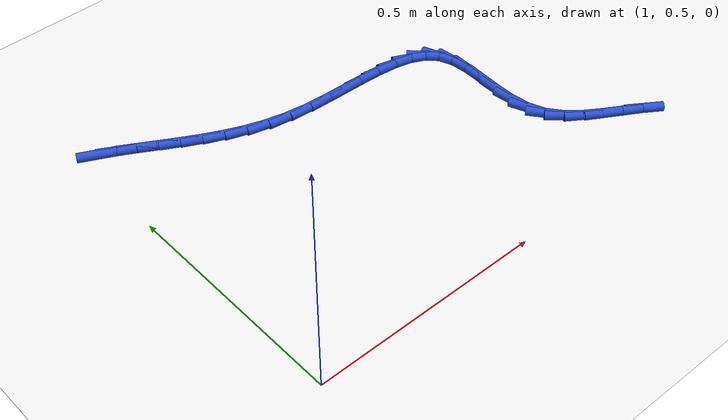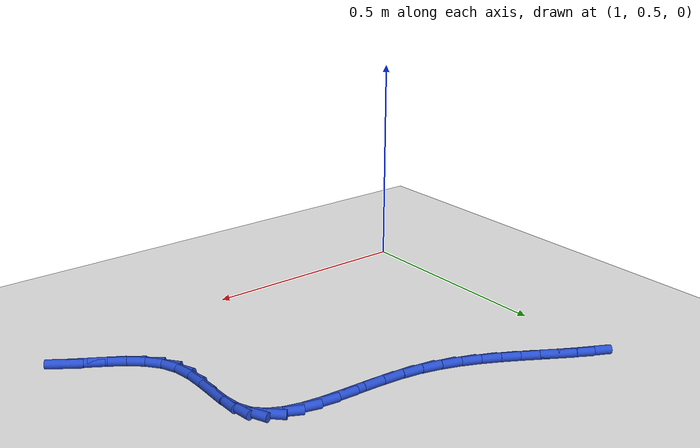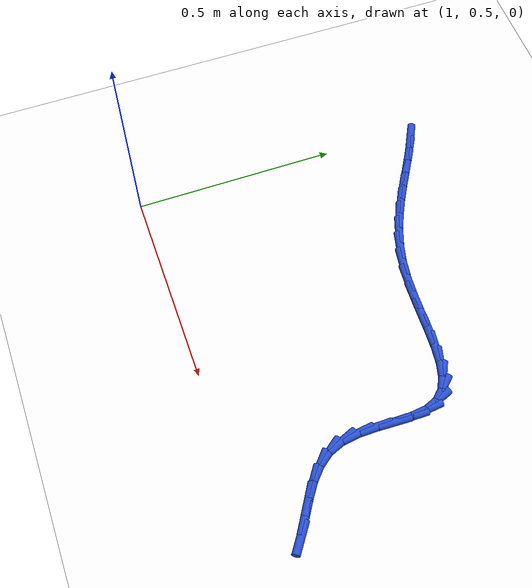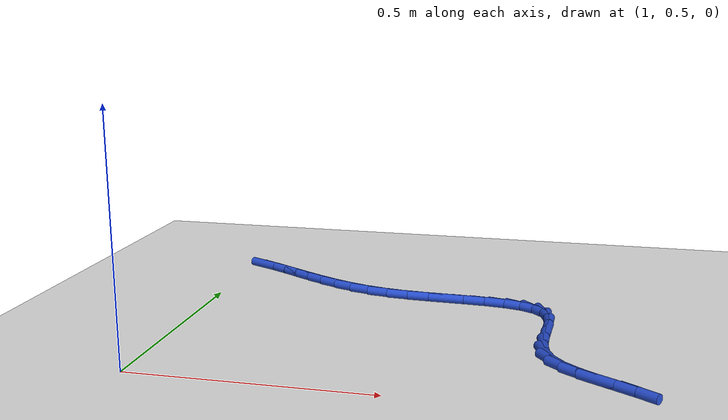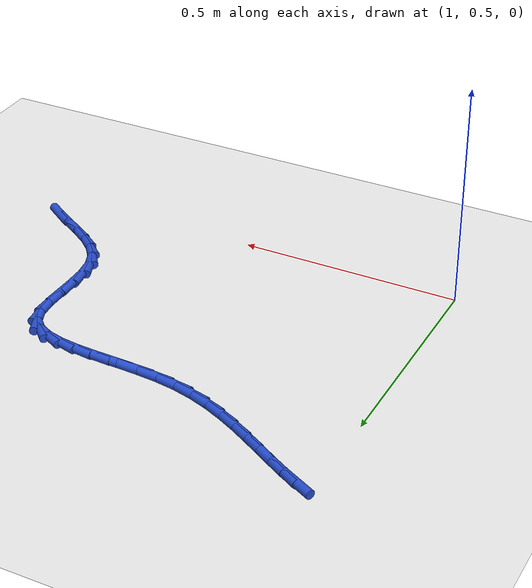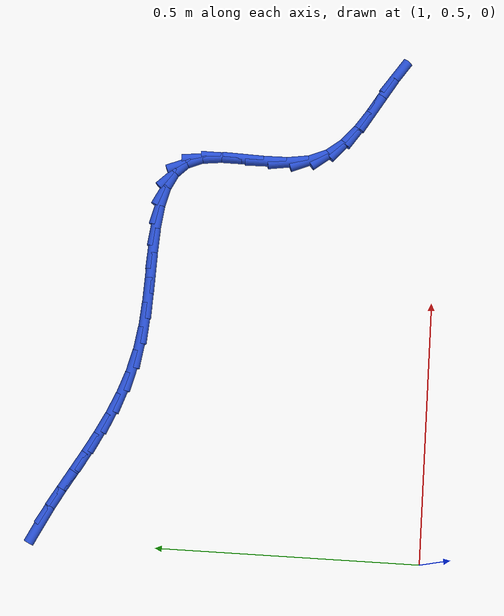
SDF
<sdf version="1.6">
 <world name="default">
  <model name="ground_plane">
   <static>1</static>
   <link name="link">
    <collision name="collision">
     <geometry><plane><normal>0 0 1</normal><size>100 100</size></plane></geometry>
     <surface><friction><ode><mu>100</mu><mu2>50</mu2></ode></friction></surface>
    </collision>
    <visual name="visual">
     <cast_shadows>0</cast_shadows>
     <geometry><plane><normal>0 0 1</normal><size>100 100</size></plane></geometry>
     <material>
      <script><uri>file://media/materials/scripts/gazebo.material</uri><name>Gazebo/WhiteGlow</name></script>
     </material>
    </visual>
   </link>
  </model>
  <model name="line">
   <link name="link_44">
    <pose>1.03076898274853 1.2206779909959502 0.01 0 1.57 -0.46638041518679646</pose>
    <collision name="collision">
     <geometry><cylinder><radius>0.01</radius><length>0.08</length></cylinder></geometry>
    </collision>
    <visual name="visual">
     <material>
      <script><name>Gazebo/Blue</name><uri>file://media/materials/scripts/gazebo.material</uri></script>
     </material>
     <geometry><cylinder><radius>0.01</radius><length>0.08</length></cylinder></geometry>
    </visual>
   </link>
   <link name="link_45">
    <pose>1.065326245441121 1.2032811499567206 0.01 0 1.57 -0.5098063022087665</pose>
    <collision name="collision">
     <geometry><cylinder><radius>0.01</radius><length>0.08</length></cylinder></geometry>
    </collision>
    <visual name="visual">
     <material>
      <script><name>Gazebo/Blue</name><uri>file://media/materials/scripts/gazebo.material</uri></script>
     </material>
     <geometry><cylinder><radius>0.01</radius><length>0.08</length></cylinder></geometry>
    </visual>
   </link>
   <link name="link_46">
    <pose>1.1002520538948501 1.1837539753512023 0.01 0 1.57 -0.5297196386514679</pose>
    <collision name="collision">
     <geometry><cylinder><radius>0.01</radius><length>0.08</length></cylinder></geometry>
    </collision>
    <visual name="visual">
     <material>
      <script><name>Gazebo/Blue</name><uri>file://media/materials/scripts/gazebo.material</uri></script>
     </material>
     <geometry><cylinder><radius>0.01</radius><length>0.08</length></cylinder></geometry>
    </visual>
   </link>
   <link name="link_47">
    <pose>1.1358236180634598 1.162925385113064 0.01 0 1.57 -0.5283322602829534</pose>
    <collision name="collision">
     <geometry><cylinder><radius>0.01</radius><length>0.08</length></cylinder></geometry>
    </collision>
    <visual name="visual">
     <material>
      <script><name>Gazebo/Blue</name><uri>file://media/materials/scripts/gazebo.material</uri></script>
     </material>
     <geometry><cylinder><radius>0.01</radius><length>0.08</length></cylinder></geometry>
    </visual>
   </link>
   <link name="link_48">
    <pose>1.1723181479006914 1.1416242971759734 0.01 0 1.57 -0.5071626566063893</pose>
    <collision name="collision">
     <geometry><cylinder><radius>0.01</radius><length>0.08</length></cylinder></geometry>
    </collision>
    <visual name="visual">
     <material>
      <script><name>Gazebo/Blue</name><uri>file://media/materials/scripts/gazebo.material</uri></script>
     </material>
     <geometry><cylinder><radius>0.01</radius><length>0.08</length></cylinder></geometry>
    </visual>
   </link>
   <link name="link_49">
    <pose>1.2100128533602879 1.120679629473599 0.01 0 1.57 -0.4671802714398391</pose>
    <collision name="collision">
     <geometry><cylinder><radius>0.01</radius><length>0.08</length></cylinder></geometry>
    </collision>
    <visual name="visual">
     <material>
      <script><name>Gazebo/Blue</name><uri>file://media/materials/scripts/gazebo.material</uri></script>
     </material>
     <geometry><cylinder><radius>0.01</radius><length>0.08</length></cylinder></geometry>
    </visual>
   </link>
   <link name="link_50">
    <pose>1.2491849443959908 1.1009202999396097 0.01 0 1.57 -0.40911714017227935</pose>
    <collision name="collision">
     <geometry><cylinder><radius>0.01</radius><length>0.08</length></cylinder></geometry>
    </collision>
    <visual name="visual">
     <material>
      <script><name>Gazebo/Blue</name><uri>file://media/materials/scripts/gazebo.material</uri></script>
     </material>
     <geometry><cylinder><radius>0.01</radius><length>0.08</length></cylinder></geometry>
    </visual>
   </link>
   <link name="link_51">
    <pose>1.2901116309615432 1.0831752265076737 0.01 0 1.57 -0.3339021195107667</pose>
    <collision name="collision">
     <geometry><cylinder><radius>0.01</radius><length>0.08</length></cylinder></geometry>
    </collision>
    <visual name="visual">
     <material>
      <script><name>Gazebo/Blue</name><uri>file://media/materials/scripts/gazebo.material</uri></script>
     </material>
     <geometry><cylinder><radius>0.01</radius><length>0.08</length></cylinder></geometry>
    </visual>
   </link>
   <link name="link_52">
    <pose>1.3330701230106872 1.0682733271114588 0.01 0 1.57 -0.2431675466790465</pose>
    <collision name="collision">
     <geometry><cylinder><radius>0.01</radius><length>0.08</length></cylinder></geometry>
    </collision>
    <visual name="visual">
     <material>
      <script><name>Gazebo/Blue</name><uri>file://media/materials/scripts/gazebo.material</uri></script>
     </material>
     <geometry><cylinder><radius>0.01</radius><length>0.08</length></cylinder></geometry>
    </visual>
   </link>
   <link name="link_53">
    <pose>1.3783376304971646 1.0570435196846342 0.01 0 1.57 -0.1456776935267775</pose>
    <collision name="collision">
     <geometry><cylinder><radius>0.01</radius><length>0.08</length></cylinder></geometry>
    </collision>
    <visual name="visual">
     <material>
      <script><name>Gazebo/Blue</name><uri>file://media/materials/scripts/gazebo.material</uri></script>
     </material>
     <geometry><cylinder><radius>0.01</radius><length>0.08</length></cylinder></geometry>
    </visual>
   </link>
   <link name="link_54">
    <pose>1.42600359173215 1.0500501109070908 0.01 0 1.57 -0.07510812287152586</pose>
    <collision name="collision">
     <geometry><cylinder><radius>0.01</radius><length>0.08</length></cylinder></geometry>
    </collision>
    <visual name="visual">
     <material>
      <script><name>Gazebo/Blue</name><uri>file://media/materials/scripts/gazebo.material</uri></script>
     </material>
     <geometry><cylinder><radius>0.01</radius><length>0.08</length></cylinder></geometry>
    </visual>
   </link>
   <link name="link_55">
    <pose>1.4750921760559546 1.0463562108236164 0.01 0 1.57 -0.03781792178557751</pose>
    <collision name="collision">
     <geometry><cylinder><radius>0.01</radius><length>0.08</length></cylinder></geometry>
    </collision>
    <visual name="visual">
     <material>
      <script><name>Gazebo/Blue</name><uri>file://media/materials/scripts/gazebo.material</uri></script>
     </material>
     <geometry><cylinder><radius>0.01</radius><length>0.08</length></cylinder></geometry>
    </visual>
   </link>
   <link name="link_56">
    <pose>1.5242523511176602 1.0444961883518673 0.01 0 1.57 -0.031158605753219992</pose>
    <collision name="collision">
     <geometry><cylinder><radius>0.01</radius><length>0.08</length></cylinder></geometry>
    </collision>
    <visual name="visual">
     <material>
      <script><name>Gazebo/Blue</name><uri>file://media/materials/scripts/gazebo.material</uri></script>
     </material>
     <geometry><cylinder><radius>0.01</radius><length>0.08</length></cylinder></geometry>
    </visual>
   </link>
   <link name="link_57">
    <pose>1.5721326652700809 1.0430038215294792 0.01 0 1.57 -0.05719699922522653</pose>
    <collision name="collision">
     <geometry><cylinder><radius>0.01</radius><length>0.08</length></cylinder></geometry>
    </collision>
    <visual name="visual">
     <material>
      <script><name>Gazebo/Blue</name><uri>file://media/materials/scripts/gazebo.material</uri></script>
     </material>
     <geometry><cylinder><radius>0.01</radius><length>0.08</length></cylinder></geometry>
    </visual>
   </link>
   <link name="link_58">
    <pose>1.6173816668660306 1.0404128883940884 0.01 0 1.57 -0.12429395373571693</pose>
    <collision name="collision">
     <geometry><cylinder><radius>0.01</radius><length>0.08</length></cylinder></geometry>
    </collision>
    <visual name="visual">
     <material>
      <script><name>Gazebo/Blue</name><uri>file://media/materials/scripts/gazebo.material</uri></script>
     </material>
     <geometry><cylinder><radius>0.01</radius><length>0.08</length></cylinder></geometry>
    </visual>
   </link>
   <link name="link_59">
    <pose>1.6586479042583213 1.0352571669833315 0.01 0 1.57 -0.2503077564738116</pose>
    <collision name="collision">
     <geometry><cylinder><radius>0.01</radius><length>0.08</length></cylinder></geometry>
    </collision>
    <visual name="visual">
     <material>
      <script><name>Gazebo/Blue</name><uri>file://media/materials/scripts/gazebo.material</uri></script>
     </material>
     <geometry><cylinder><radius>0.01</radius><length>0.08</length></cylinder></geometry>
    </visual>
   </link>
   <link name="link_60">
    <pose>1.694579925799767 1.0260704353348438 0.01 0 1.57 -0.4653089791982063</pose>
    <collision name="collision">
     <geometry><cylinder><radius>0.01</radius><length>0.08</length></cylinder></geometry>
    </collision>
    <visual name="visual">
     <material>
      <script><name>Gazebo/Blue</name><uri>file://media/materials/scripts/gazebo.material</uri></script>
     </material>
     <geometry><cylinder><radius>0.01</radius><length>0.08</length></cylinder></geometry>
    </visual>
   </link>
   <link name="link_61">
    <pose>1.7238262798431796 1.0113864714862613 0.01 0 1.57 -0.7956221966597491</pose>
    <collision name="collision">
     <geometry><cylinder><radius>0.01</radius><length>0.08</length></cylinder></geometry>
    </collision>
    <visual name="visual">
     <material>
      <script><name>Gazebo/Blue</name><uri>file://media/materials/scripts/gazebo.material</uri></script>
     </material>
     <geometry><cylinder><radius>0.01</radius><length>0.08</length></cylinder></geometry>
    </visual>
   </link>
   <link name="link_62">
    <pose>1.7450355147413734 0.9897390534752208 0.01 0 1.57 -1.1890866099172082</pose>
    <collision name="collision">
     <geometry><cylinder><radius>0.01</radius><length>0.08</length></cylinder></geometry>
    </collision>
    <visual name="visual">
     <material>
      <script><name>Gazebo/Blue</name><uri>file://media/materials/scripts/gazebo.material</uri></script>
     </material>
     <geometry><cylinder><radius>0.01</radius><length>0.08</length></cylinder></geometry>
    </visual>
   </link>
   <link name="link_63">
    <pose>1.7570431057543732 0.9598245185783914 0.01 0 1.57 -1.458287280915823</pose>
    <collision name="collision">
     <geometry><cylinder><radius>0.01</radius><length>0.08</length></cylinder></geometry>
    </collision>
    <visual name="visual">
     <material>
      <script><name>Gazebo/Blue</name><uri>file://media/materials/scripts/gazebo.material</uri></script>
     </material>
     <geometry><cylinder><radius>0.01</radius><length>0.08</length></cylinder></geometry>
    </visual>
   </link>
   <link name="link_64">
    <pose>1.761252116343009 0.9225720831710116 0.01 0 1.57 1.5631584580072675</pose>
    <collision name="collision">
     <geometry><cylinder><radius>0.01</radius><length>0.08</length></cylinder></geometry>
    </collision>
    <visual name="visual">
     <material>
      <script><name>Gazebo/Blue</name><uri>file://media/materials/scripts/gazebo.material</uri></script>
     </material>
     <geometry><cylinder><radius>0.01</radius><length>0.08</length></cylinder></geometry>
    </visual>
   </link>
   <link name="link_65">
    <pose>1.7609310226433266 0.8805332023391028 0.01 0 1.57 1.5359814922940118</pose>
    <collision name="collision">
     <geometry><cylinder><radius>0.01</radius><length>0.08</length></cylinder></geometry>
    </collision>
    <visual name="visual">
     <material>
      <script><name>Gazebo/Blue</name><uri>file://media/materials/scripts/gazebo.material</uri></script>
     </material>
     <geometry><cylinder><radius>0.01</radius><length>0.08</length></cylinder></geometry>
    </visual>
   </link>
   <link name="link_66">
    <pose>1.7593902836904989 0.8362958412048084 0.01 0 1.57 -1.5582519113877884</pose>
    <collision name="collision">
     <geometry><cylinder><radius>0.01</radius><length>0.08</length></cylinder></geometry>
    </collision>
    <visual name="visual">
     <material>
      <script><name>Gazebo/Blue</name><uri>file://media/materials/scripts/gazebo.material</uri></script>
     </material>
     <geometry><cylinder><radius>0.01</radius><length>0.08</length></cylinder></geometry>
    </visual>
   </link>
   <link name="link_67">
    <pose>1.7599403585197013 0.792447964890274 0.01 0 1.57 -1.4261976096504339</pose>
    <collision name="collision">
     <geometry><cylinder><radius>0.01</radius><length>0.08</length></cylinder></geometry>
    </collision>
    <visual name="visual">
     <material>
      <script><name>Gazebo/Blue</name><uri>file://media/materials/scripts/gazebo.material</uri></script>
     </material>
     <geometry><cylinder><radius>0.01</radius><length>0.08</length></cylinder></geometry>
    </visual>
   </link>
   <link name="link_68">
    <pose>1.765891706166107 0.7515775385176438 0.01 0 1.57 -1.184262760017396</pose>
    <collision name="collision">
     <geometry><cylinder><radius>0.01</radius><length>0.08</length></cylinder></geometry>
    </collision>
    <visual name="visual">
     <material>
      <script><name>Gazebo/Blue</name><uri>file://media/materials/scripts/gazebo.material</uri></script>
     </material>
     <geometry><cylinder><radius>0.01</radius><length>0.08</length></cylinder></geometry>
    </visual>
   </link>
   <link name="link_69">
    <pose>1.7803311577837029 0.7161005132148716 0.01 0 1.57 -0.9146831074800857</pose>
    <collision name="collision">
     <geometry><cylinder><radius>0.01</radius><length>0.08</length></cylinder></geometry>
    </collision>
    <visual name="visual">
     <material>
      <script><name>Gazebo/Blue</name><uri>file://media/materials/scripts/gazebo.material</uri></script>
     </material>
     <geometry><cylinder><radius>0.01</radius><length>0.08</length></cylinder></geometry>
    </visual>
   </link>
   <link name="link_70">
    <pose>1.8033853889689875 0.6861558960268942 0.01 0 1.57 -0.7168910019843812</pose>
    <collision name="collision">
     <geometry><cylinder><radius>0.01</radius><length>0.08</length></cylinder></geometry>
    </collision>
    <visual name="visual">
     <material>
      <script><name>Gazebo/Blue</name><uri>file://media/materials/scripts/gazebo.material</uri></script>
     </material>
     <geometry><cylinder><radius>0.01</radius><length>0.08</length></cylinder></geometry>
    </visual>
   </link>
   <link name="link_71">
    <pose>1.8330849048905153 0.6602703250672801 0.01 0 1.57 -0.5969566195680475</pose>
    <collision name="collision">
     <geometry><cylinder><radius>0.01</radius><length>0.08</length></cylinder></geometry>
    </collision>
    <visual name="visual">
     <material>
      <script><name>Gazebo/Blue</name><uri>file://media/materials/scripts/gazebo.material</uri></script>
     </material>
     <geometry><cylinder><radius>0.01</radius><length>0.08</length></cylinder></geometry>
    </visual>
   </link>
   <link name="link_72">
    <pose>1.8674158580069635 0.6369363224586118 0.01 0 1.57 -0.542819743999252</pose>
    <collision name="collision">
     <geometry><cylinder><radius>0.01</radius><length>0.08</length></cylinder></geometry>
    </collision>
    <visual name="visual">
     <material>
      <script><name>Gazebo/Blue</name><uri>file://media/materials/scripts/gazebo.material</uri></script>
     </material>
     <geometry><cylinder><radius>0.01</radius><length>0.08</length></cylinder></geometry>
    </visual>
   </link>
   <link name="link_73">
    <pose>1.9043644007770093 0.6146464103234709 0.01 0 1.57 -0.5447536552811245</pose>
    <collision name="collision">
     <geometry><cylinder><radius>0.01</radius><length>0.08</length></cylinder></geometry>
    </collision>
    <visual name="visual">
     <material>
      <script><name>Gazebo/Blue</name><uri>file://media/materials/scripts/gazebo.material</uri></script>
     </material>
     <geometry><cylinder><radius>0.01</radius><length>0.08</length></cylinder></geometry>
    </visual>
   </link>
   <link name="link_74">
    <pose>1.9419166856593302 0.5918931107844391 0.01 0 1.57 -0.5998844561634533</pose>
    <collision name="collision">
     <geometry><cylinder><radius>0.01</radius><length>0.08</length></cylinder></geometry>
    </collision>
    <visual name="visual">
     <material>
      <script><name>Gazebo/Blue</name><uri>file://media/materials/scripts/gazebo.material</uri></script>
     </material>
     <geometry><cylinder><radius>0.01</radius><length>0.08</length></cylinder></geometry>
    </visual>
   </link>
  </model>
 </world>
</sdf>
